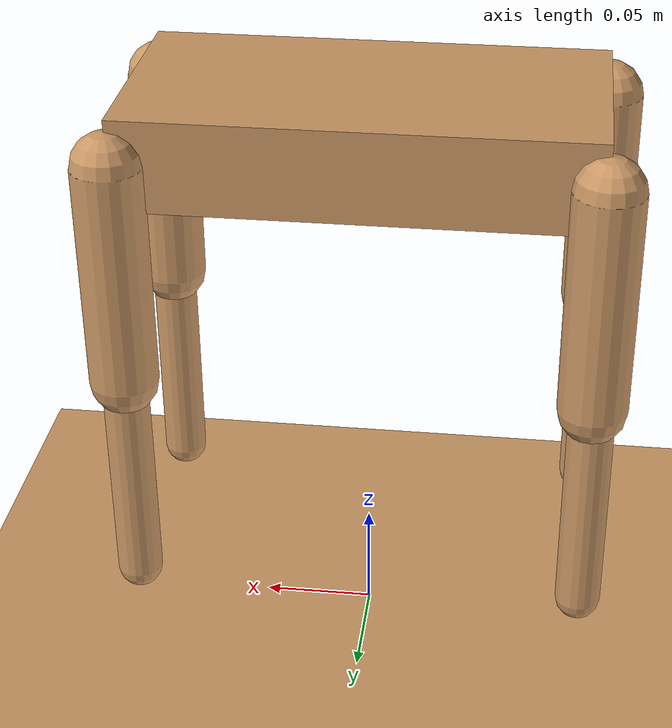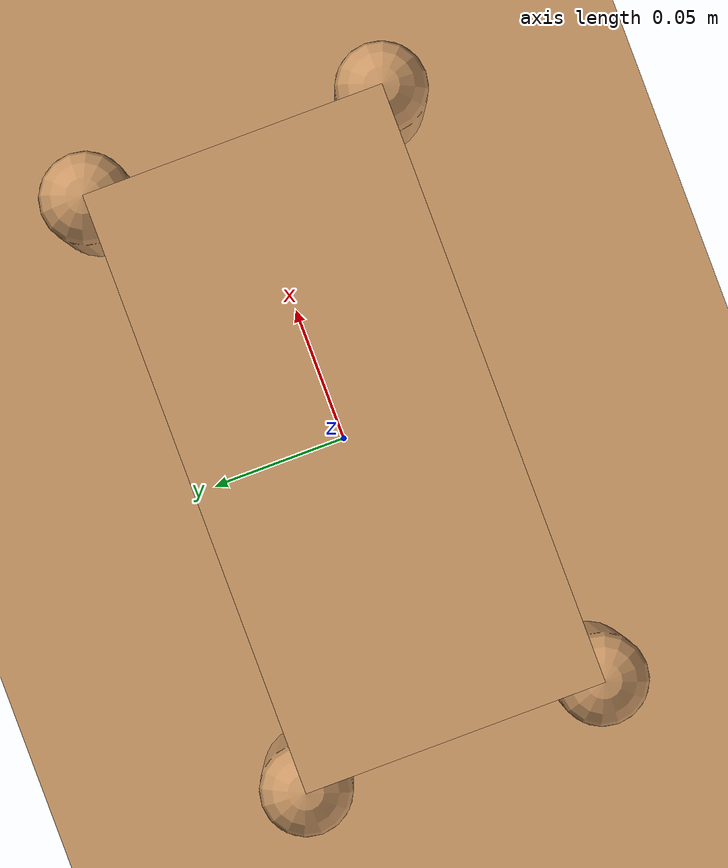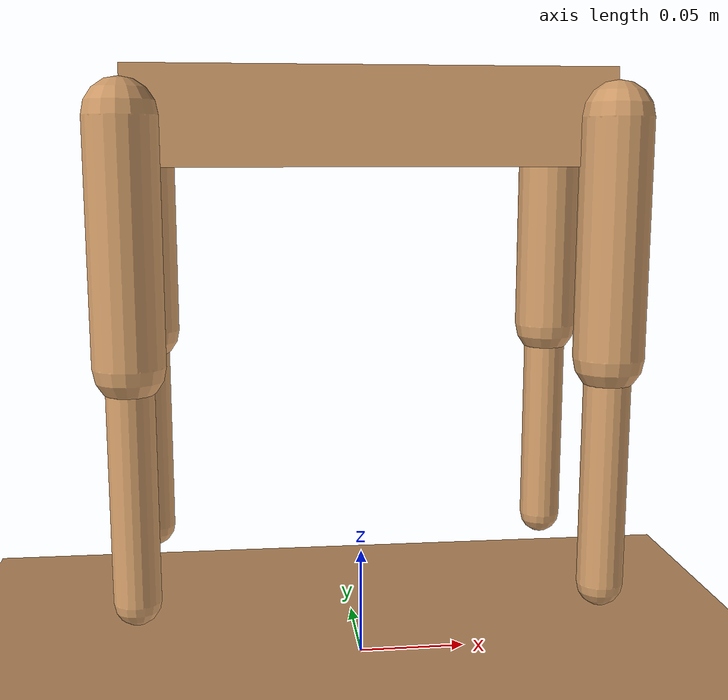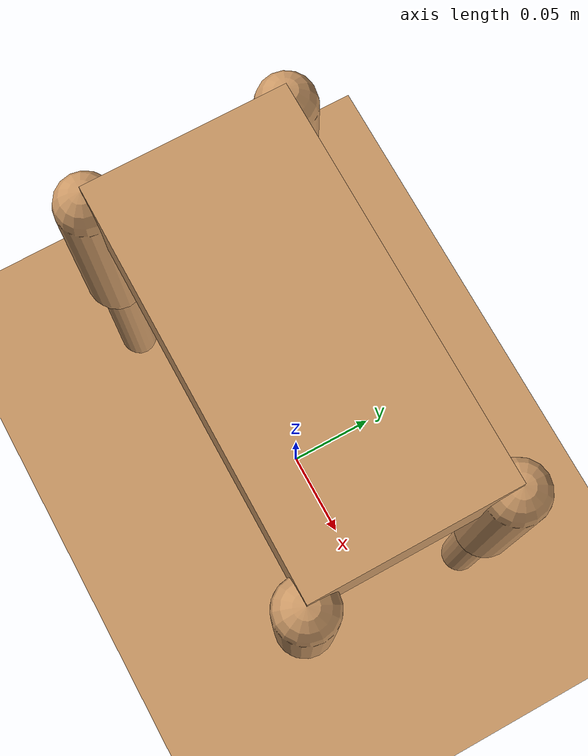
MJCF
<mujoco model="stanford_pupper">
    <compiler angle="degree"/>
    <option gravity="0 0 -9.81" timestep="0.002"/>

    <default>
        <joint limited="true" damping="0.1" armature="0.01"/>
        <geom conaffinity="0" condim="3" contype="1" friction="1.5 .1 .1" rgba="0.8 0.6 .4 1"/>
    </default>

    <asset>
<texture type="skybox" builtin="gradient" rgb1="0.3 0.5 0.7" rgb2="0 0 0" width="512" height="512"/>
        <texture name="plane" type="2d" builtin="checker" rgb1=".2 .3 .4" rgb2=".1 .2 .3" width="512" height="512" mark="cross" markrgb=".8 .8 .8"/>
        <material name="plane" reflectance="0.3" texture="plane" texrepeat="1 1" texuniform="true"/>
    </asset>

    <worldbody>
        <light directional="true" diffuse=".8 .8 .8" specular=".2 .2 .2" pos="0 0 1" dir="0 0 -1"/>
        <geom name="ground" type="plane" size="5 5 0.1" material="plane" conaffinity="1" contype="1"/>

        <!-- Torso of the Pupper -->
        <body name="torso" pos="0 0 0.25">
            <joint type="free"/>
            <geom type="box" size="0.1 0.05 0.02" mass="1"/>
            <site name="torso" pos="0 0 0" size="0.01"/> <!-- Added site for sensors -->

            <!-- Front Left Leg -->
            <body name="front_left_leg" pos="0.1 0.05 0">
                <joint name="front_left_hip" type="hinge" axis="0 1 0" range="-45 45"/>
                <geom type="capsule" fromto="0 0 0 0 0 -0.1" size="0.015" mass="0.1"/>
                <body name="front_left_lower" pos="0 0 -0.1">
                    <joint name="front_left_knee" type="hinge" axis="0 1 0" range="-90 90"/>
                    <geom type="capsule" fromto="0 0 0 0 0 -0.1" size="0.01" mass="0.05"/>
                </body>
            </body>

            <!-- Front Right Leg -->
            <body name="front_right_leg" pos="0.1 -0.05 0">
                <joint name="front_right_hip" type="hinge" axis="0 1 0" range="-45 45"/>
                <geom type="capsule" fromto="0 0 0 0 0 -0.1" size="0.015" mass="0.1"/>
                <body name="front_right_lower" pos="0 0 -0.1">
                    <joint name="front_right_knee" type="hinge" axis="0 1 0" range="-90 90"/>
                    <geom type="capsule" fromto="0 0 0 0 0 -0.1" size="0.01" mass="0.05"/>
                </body>
            </body>

            <!-- Back Left Leg -->
            <body name="back_left_leg" pos="-0.1 0.05 0">
                <joint name="back_left_hip" type="hinge" axis="0 1 0" range="-45 45"/>
                <geom type="capsule" fromto="0 0 0 0 0 -0.1" size="0.015" mass="0.1"/>
                <body name="back_left_lower" pos="0 0 -0.1">
                    <joint name="back_left_knee" type="hinge" axis="0 1 0" range="-90 90"/>
                    <geom type="capsule" fromto="0 0 0 0 0 -0.1" size="0.01" mass="0.05"/>
                </body>
            </body>

            <!-- Back Right Leg -->
            <body name="back_right_leg" pos="-0.1 -0.05 0">
                <joint name="back_right_hip" type="hinge" axis="0 1 0" range="-45 45"/>
                <geom type="capsule" fromto="0 0 0 0 0 -0.1" size="0.015" mass="0.1"/>
                <body name="back_right_lower" pos="0 0 -0.1">
                    <joint name="back_right_knee" type="hinge" axis="0 1 0" range="-90 90"/>
                    <geom type="capsule" fromto="0 0 0 0 0 -0.1" size="0.01" mass="0.05"/>
                </body>
            </body>
        </body>
    </worldbody>

    <actuator>
        <motor joint="front_left_hip" ctrlrange="-1 1" gear="100"/>
        <motor joint="front_left_knee" ctrlrange="-1 1" gear="100"/>
        <motor joint="front_right_hip" ctrlrange="-1 1" gear="100"/>
        <motor joint="front_right_knee" ctrlrange="-1 1" gear="100"/>
        <motor joint="back_left_hip" ctrlrange="-1 1" gear="100"/>
        <motor joint="back_left_knee" ctrlrange="-1 1" gear="100"/>
        <motor joint="back_right_hip" ctrlrange="-1 1" gear="100"/>
        <motor joint="back_right_knee" ctrlrange="-1 1" gear="100"/>
    </actuator>

    <sensor>
        <accelerometer name="torso_accel" site="torso"/>
        <gyro name="torso_gyro" site="torso"/>
    </sensor>
</mujoco>
